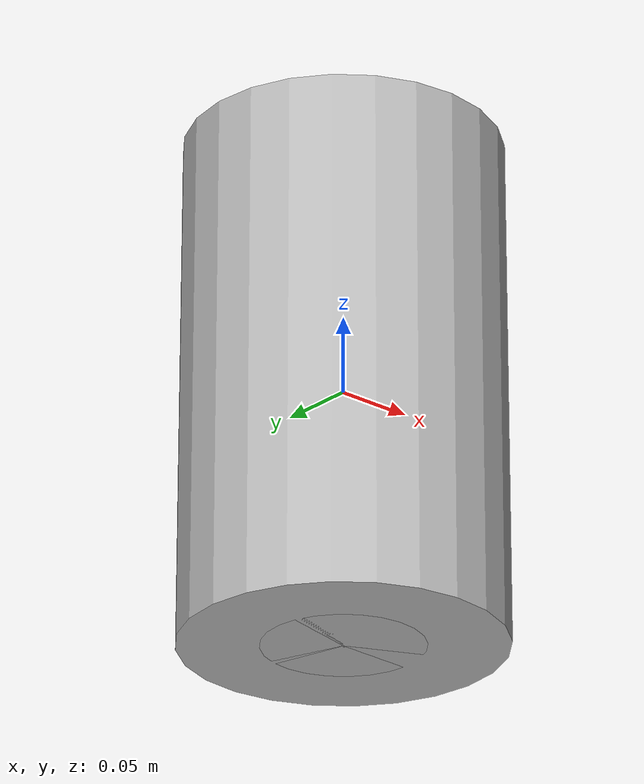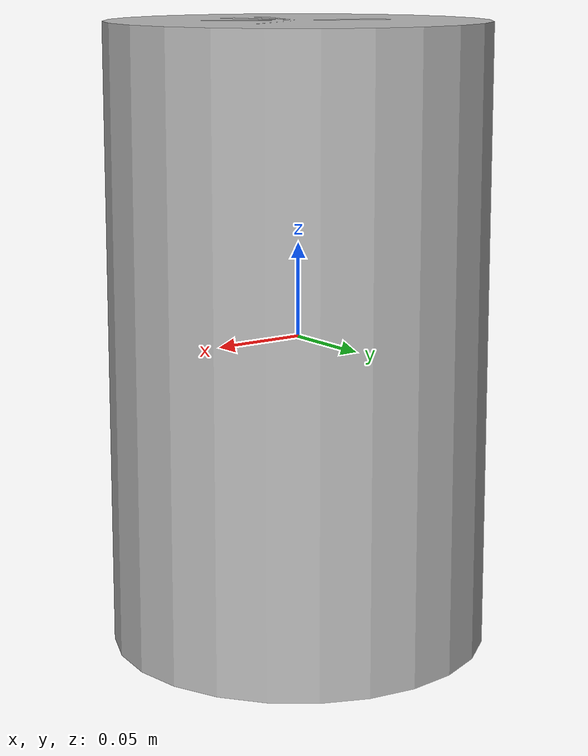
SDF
<?xml version="1.0" encoding="UTF-8"?>
<sdf version="1.7">
  <model name="fanuc_lrmate200id">
    <static>false</static>

    <link name="base_link">
      <inertial>
        <mass>6</mass>
        <inertia>
          <ixx>0.06</ixx><iyy>0.06</iyy><izz>0.06</izz>
          <ixy>0</ixy><ixz>0</ixz><iyz>0</iyz>
        </inertia>
      </inertial>
      <visual name="base_link_visual">
        <geometry>
          <cylinder>
            <radius>0.1</radius>
            <length>0.33</length>
          </cylinder>
        </geometry>
      </visual>
      <collision name="base_link_collision">
        <geometry>
          <cylinder>
            <radius>0.1</radius>
            <length>0.33</length>
          </cylinder>
        </geometry>
      </collision>
    </link>

    <link name="link_j1">
      <inertial>
        <mass>4.5</mass>
        <inertia>
          <ixx>0.045</ixx><iyy>0.045</iyy><izz>0.045</izz>
          <ixy>0</ixy><ixz>0</ixz><iyz>0</iyz>
        </inertia>
      </inertial>
      <visual name="link_j1_visual">
        <geometry>
          <cylinder>
            <radius>0.085</radius>
            <length>0.15</length>
          </cylinder>
        </geometry>
      </visual>
      <collision name="link_j1_collision">
        <geometry>
          <cylinder>
            <radius>0.085</radius>
            <length>0.15</length>
          </cylinder>
        </geometry>
      </collision>
    </link>

    <link name="link_upper_arm">
      <inertial>
        <mass>3.5</mass>
        <inertia>
          <ixx>0.035</ixx><iyy>0.035</iyy><izz>0.035</izz>
          <ixy>0</ixy><ixz>0</ixz><iyz>0</iyz>
        </inertia>
      </inertial>
      <visual name="link_upper_arm_visual">
        <geometry>
          <cylinder>
            <radius>0.05</radius>
            <length>0.33</length>
          </cylinder>
        </geometry>
      </visual>
      <collision name="link_upper_arm_collision">
        <geometry>
          <cylinder>
            <radius>0.05</radius>
            <length>0.33</length>
          </cylinder>
        </geometry>
      </collision>
    </link>

    <link name="link_elbow">
      <inertial>
        <mass>2</mass>
        <inertia>
          <ixx>0.02</ixx><iyy>0.02</iyy><izz>0.02</izz>
          <ixy>0</ixy><ixz>0</ixz><iyz>0</iyz>
        </inertia>
      </inertial>
      <visual name="link_elbow_visual">
        <geometry>
          <cylinder>
            <radius>0.05</radius>
            <length>0.075</length>
          </cylinder>
        </geometry>
      </visual>
      <collision name="link_elbow_collision">
        <geometry>
          <cylinder>
            <radius>0.05</radius>
            <length>0.075</length>
          </cylinder>
        </geometry>
      </collision>
    </link>

    <link name="link_forearm">
      <inertial>
        <mass>2.5</mass>
        <inertia>
          <ixx>0.025</ixx><iyy>0.025</iyy><izz>0.025</izz>
          <ixy>0</ixy><ixz>0</ixz><iyz>0</iyz>
        </inertia>
      </inertial>
      <visual name="link_forearm_visual">
        <geometry>
          <cylinder>
            <radius>0.04</radius>
            <length>0.29</length>
          </cylinder>
        </geometry>
      </visual>
      <collision name="link_forearm_collision">
        <geometry>
          <cylinder>
            <radius>0.04</radius>
            <length>0.29</length>
          </cylinder>
        </geometry>
      </collision>
    </link>

    <link name="link_wrist">
      <inertial>
        <mass>0.8</mass>
        <inertia>
          <ixx>0.008</ixx><iyy>0.008</iyy><izz>0.008</izz>
          <ixy>0</ixy><ixz>0</ixz><iyz>0</iyz>
        </inertia>
      </inertial>
      <visual name="link_wrist_visual">
        <geometry>
          <cylinder>
            <radius>0.04</radius>
            <length>0.05</length>
          </cylinder>
        </geometry>
      </visual>
      <collision name="link_wrist_collision">
        <geometry>
          <cylinder>
            <radius>0.04</radius>
            <length>0.05</length>
          </cylinder>
        </geometry>
      </collision>
    </link>

    <link name="tool_flange">
      <inertial>
        <mass>0.3</mass>
        <inertia>
          <ixx>0.003</ixx><iyy>0.003</iyy><izz>0.003</izz>
          <ixy>0</ixy><ixz>0</ixz><iyz>0</iyz>
        </inertia>
      </inertial>
      <visual name="tool_flange_visual">
        <geometry>
          <cylinder>
            <radius>0.025</radius>
            <length>0.02</length>
          </cylinder>
        </geometry>
      </visual>
      <collision name="tool_flange_collision">
        <geometry>
          <cylinder>
            <radius>0.025</radius>
            <length>0.02</length>
          </cylinder>
        </geometry>
      </collision>
    </link>

    <joint name="j_fix" type="fixed">
      <parent>world</parent>
      <child>base_link</child>
    </joint>

    <joint name="j1" type="revolute">
      <parent>base_link</parent>
      <child>link_j1</child>
      <pose relative_to="base_link">0 0 0.33 0.0000 0.0000 0.0000</pose>
      <axis>
        <xyz>0 0 1</xyz>
        <limit>
          <lower>-170</lower>
          <upper>170</upper>
          <effort>60</effort>
          <velocity>6.28</velocity>
        </limit>
      </axis>
    </joint>

    <joint name="j2" type="revolute">
      <parent>link_j1</parent>
      <child>link_upper_arm</child>
      <pose relative_to="link_j1">0 0 0.075 0.0000 0.0000 0.0000</pose>
      <axis>
        <xyz>0 1 0</xyz>
        <limit>
          <lower>-100</lower>
          <upper>145</upper>
          <effort>60</effort>
          <velocity>5.06</velocity>
        </limit>
      </axis>
    </joint>

    <joint name="j3" type="revolute">
      <parent>link_upper_arm</parent>
      <child>link_elbow</child>
      <pose relative_to="link_upper_arm">0 0 0.33 0.0000 0.0000 0.0000</pose>
      <axis>
        <xyz>0 1 0</xyz>
        <limit>
          <lower>-180</lower>
          <upper>213</upper>
          <effort>50</effort>
          <velocity>6.28</velocity>
        </limit>
      </axis>
    </joint>

    <joint name="j4" type="revolute">
      <parent>link_elbow</parent>
      <child>link_forearm</child>
      <pose relative_to="link_elbow">0 0 0.075 0.0000 0.0000 0.0000</pose>
      <axis>
        <xyz>0 0 1</xyz>
        <limit>
          <lower>-190</lower>
          <upper>190</upper>
          <effort>30</effort>
          <velocity>7.85</velocity>
        </limit>
      </axis>
    </joint>

    <joint name="j5" type="revolute">
      <parent>link_forearm</parent>
      <child>link_wrist</child>
      <pose relative_to="link_forearm">0 0 0.29 0.0000 0.0000 0.0000</pose>
      <axis>
        <xyz>0 1 0</xyz>
        <limit>
          <lower>-125</lower>
          <upper>125</upper>
          <effort>30</effort>
          <velocity>7.85</velocity>
        </limit>
      </axis>
    </joint>

    <joint name="j6" type="revolute">
      <parent>link_wrist</parent>
      <child>tool_flange</child>
      <pose relative_to="link_wrist">0 0 0.05 0.0000 0.0000 0.0000</pose>
      <axis>
        <xyz>0 0 1</xyz>
        <limit>
          <lower>-360</lower>
          <upper>360</upper>
          <effort>20</effort>
          <velocity>12.56</velocity>
        </limit>
      </axis>
    </joint>

  </model>
</sdf>
